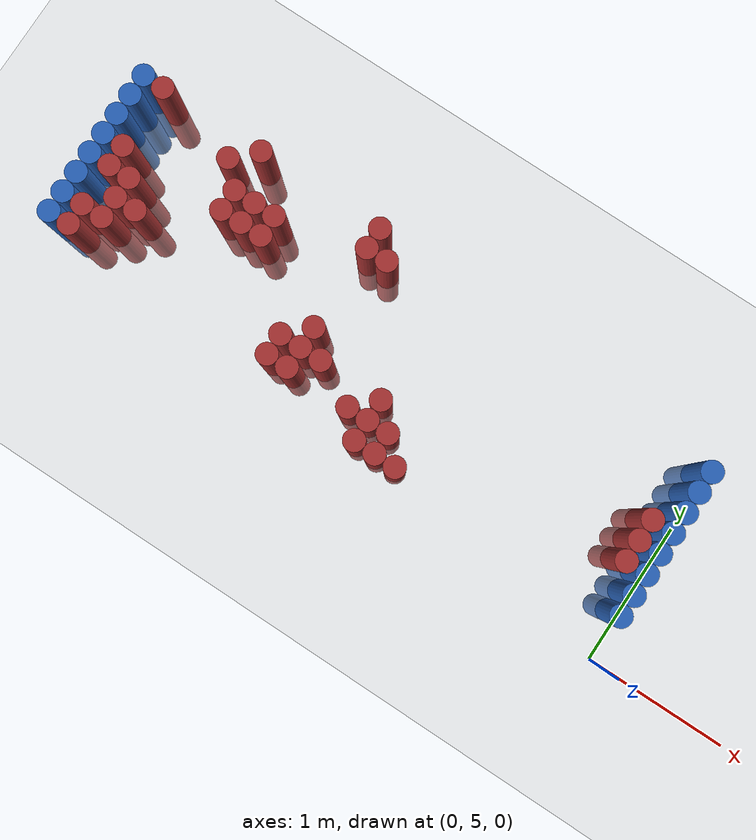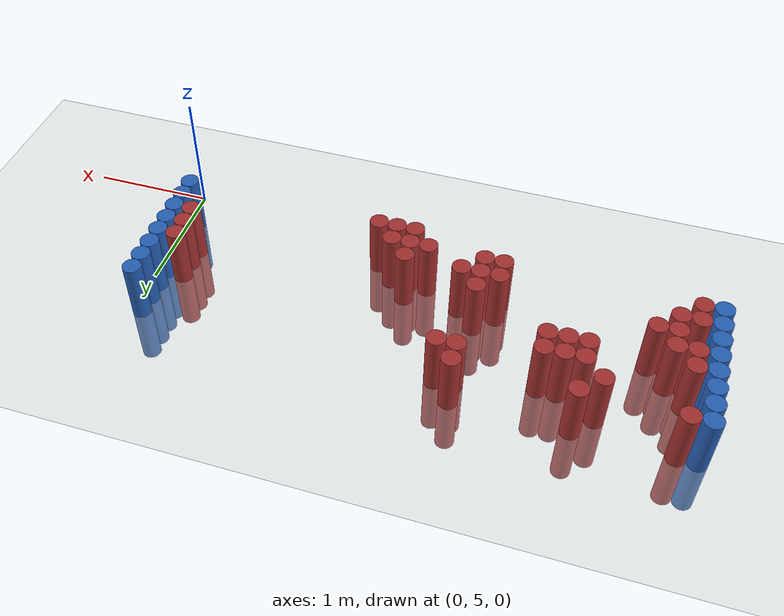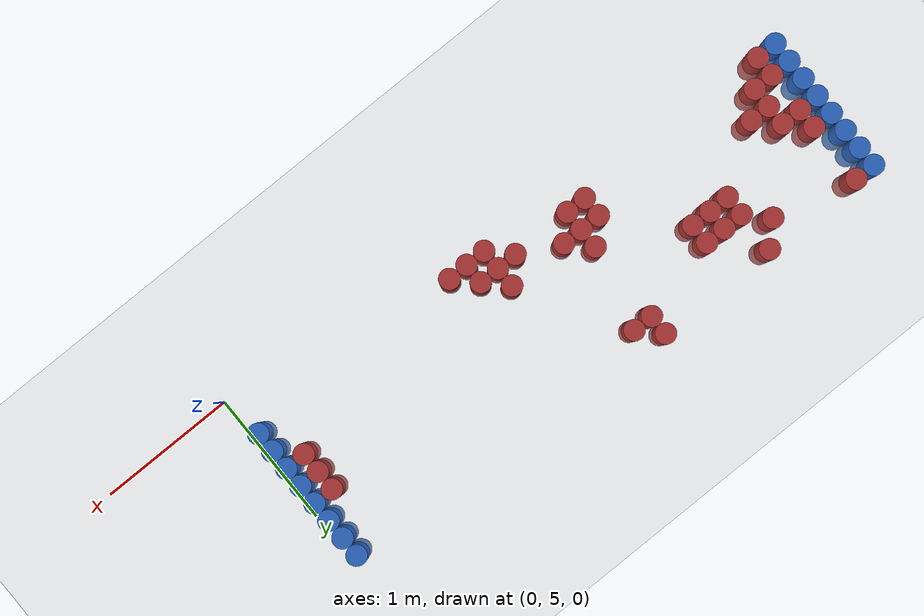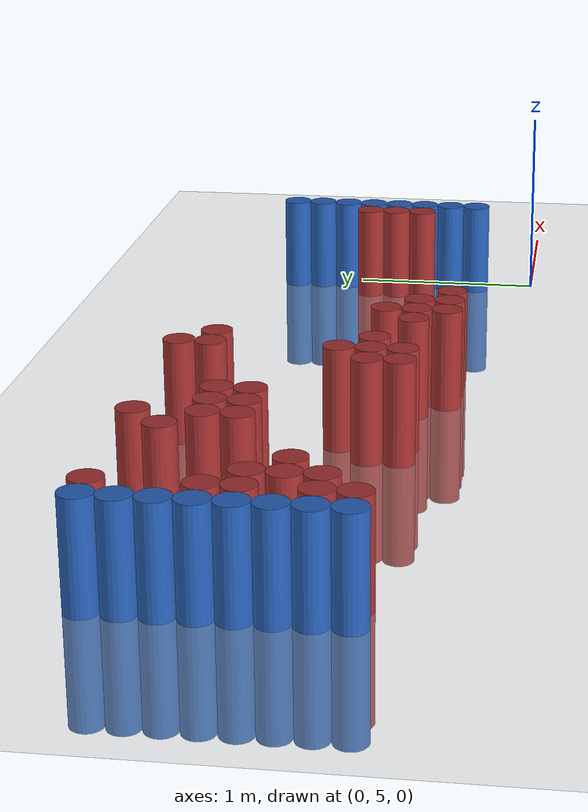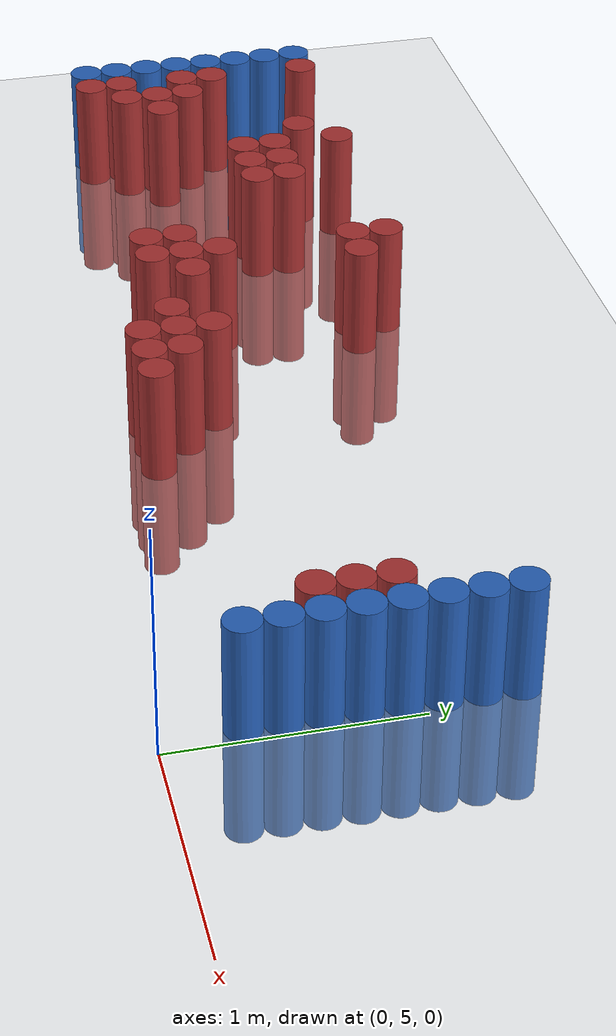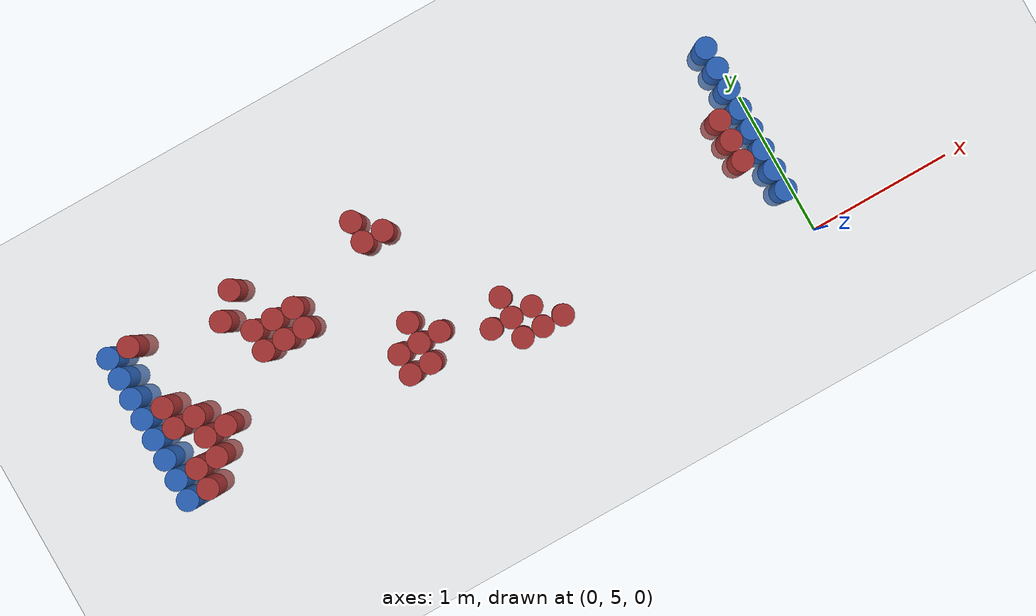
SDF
<sdf version="1.6">
 <world name="default">
  <model name="ground_plane">
   <static>1</static>
   <link name="link">
    <collision name="collision">
     <geometry><plane><normal>0 0 1</normal><size>100 100</size></plane></geometry>
     <surface><friction><ode><mu>100</mu><mu2>50</mu2></ode></friction></surface>
    </collision>
    <visual name="visual">
     <cast_shadows>0</cast_shadows>
     <geometry><plane><normal>0 0 1</normal><size>100 100</size></plane></geometry>
     <material>
      <script><uri>file://media/materials/scripts/gazebo.material</uri><name>Gazebo/Grey</name></script>
     </material>
    </visual>
   </link>
  </model>
  <model name="unit_cylinder_98">
   <static>1</static>
   <pose>-4.425000 5.475000 0.000000 0.000000 0.000000 0.000000</pose>
   <link name="link">
    <inertial>
     <mass>1</mass>
     <inertia><ixx>0.145833</ixx><ixy>0</ixy><ixz>0</ixz><iyy>0.145833</iyy><iyz>0</iyz><izz>0.125</izz></inertia>
    </inertial>
    <collision name="collision">
     <geometry><cylinder><radius>0.075000</radius><length>1</length></cylinder></geometry>
    </collision>
    <visual name="visual">
     <geometry><cylinder><radius>0.075000</radius><length>1</length></cylinder></geometry>
     <material>
      <ambient>0.152000 0.379000 0.720000 1</ambient>
      <diffuse>0.152000 0.379000 0.720000 1</diffuse>
     </material>
     <material>
      <script><name>Gazebo/Grey</name><uri>file://media/materials/scripts/gazebo.material</uri></script>
     </material>
    </visual>
   </link>
  </model>
  <model name="unit_cylinder_99">
   <static>1</static>
   <pose>-4.425000 5.625000 0.000000 0.000000 0.000000 0.000000</pose>
   <link name="link">
    <inertial>
     <mass>1</mass>
     <inertia><ixx>0.145833</ixx><ixy>0</ixy><ixz>0</ixz><iyy>0.145833</iyy><iyz>0</iyz><izz>0.125</izz></inertia>
    </inertial>
    <collision name="collision">
     <geometry><cylinder><radius>0.075000</radius><length>1</length></cylinder></geometry>
    </collision>
    <visual name="visual">
     <geometry><cylinder><radius>0.075000</radius><length>1</length></cylinder></geometry>
     <material>
      <ambient>0.152000 0.379000 0.720000 1</ambient>
      <diffuse>0.152000 0.379000 0.720000 1</diffuse>
     </material>
     <material>
      <script><name>Gazebo/Grey</name><uri>file://media/materials/scripts/gazebo.material</uri></script>
     </material>
    </visual>
   </link>
  </model>
  <model name="unit_cylinder_100">
   <static>1</static>
   <pose>-4.425000 5.775000 0.000000 0.000000 0.000000 0.000000</pose>
   <link name="link">
    <inertial>
     <mass>1</mass>
     <inertia><ixx>0.145833</ixx><ixy>0</ixy><ixz>0</ixz><iyy>0.145833</iyy><iyz>0</iyz><izz>0.125</izz></inertia>
    </inertial>
    <collision name="collision">
     <geometry><cylinder><radius>0.075000</radius><length>1</length></cylinder></geometry>
    </collision>
    <visual name="visual">
     <geometry><cylinder><radius>0.075000</radius><length>1</length></cylinder></geometry>
     <material>
      <ambient>0.152000 0.379000 0.720000 1</ambient>
      <diffuse>0.152000 0.379000 0.720000 1</diffuse>
     </material>
     <material>
      <script><name>Gazebo/Grey</name><uri>file://media/materials/scripts/gazebo.material</uri></script>
     </material>
    </visual>
   </link>
  </model>
  <model name="unit_cylinder_101">
   <static>1</static>
   <pose>-4.425000 5.925000 0.000000 0.000000 0.000000 0.000000</pose>
   <link name="link">
    <inertial>
     <mass>1</mass>
     <inertia><ixx>0.145833</ixx><ixy>0</ixy><ixz>0</ixz><iyy>0.145833</iyy><iyz>0</iyz><izz>0.125</izz></inertia>
    </inertial>
    <collision name="collision">
     <geometry><cylinder><radius>0.075000</radius><length>1</length></cylinder></geometry>
    </collision>
    <visual name="visual">
     <geometry><cylinder><radius>0.075000</radius><length>1</length></cylinder></geometry>
     <material>
      <ambient>0.152000 0.379000 0.720000 1</ambient>
      <diffuse>0.152000 0.379000 0.720000 1</diffuse>
     </material>
     <material>
      <script><name>Gazebo/Grey</name><uri>file://media/materials/scripts/gazebo.material</uri></script>
     </material>
    </visual>
   </link>
  </model>
  <model name="unit_cylinder_102">
   <static>1</static>
   <pose>-4.425000 6.075000 0.000000 0.000000 0.000000 0.000000</pose>
   <link name="link">
    <inertial>
     <mass>1</mass>
     <inertia><ixx>0.145833</ixx><ixy>0</ixy><ixz>0</ixz><iyy>0.145833</iyy><iyz>0</iyz><izz>0.125</izz></inertia>
    </inertial>
    <collision name="collision">
     <geometry><cylinder><radius>0.075000</radius><length>1</length></cylinder></geometry>
    </collision>
    <visual name="visual">
     <geometry><cylinder><radius>0.075000</radius><length>1</length></cylinder></geometry>
     <material>
      <ambient>0.152000 0.379000 0.720000 1</ambient>
      <diffuse>0.152000 0.379000 0.720000 1</diffuse>
     </material>
     <material>
      <script><name>Gazebo/Grey</name><uri>file://media/materials/scripts/gazebo.material</uri></script>
     </material>
    </visual>
   </link>
  </model>
  <model name="unit_cylinder_103">
   <static>1</static>
   <pose>-4.425000 6.225000 0.000000 0.000000 0.000000 0.000000</pose>
   <link name="link">
    <inertial>
     <mass>1</mass>
     <inertia><ixx>0.145833</ixx><ixy>0</ixy><ixz>0</ixz><iyy>0.145833</iyy><iyz>0</iyz><izz>0.125</izz></inertia>
    </inertial>
    <collision name="collision">
     <geometry><cylinder><radius>0.075000</radius><length>1</length></cylinder></geometry>
    </collision>
    <visual name="visual">
     <geometry><cylinder><radius>0.075000</radius><length>1</length></cylinder></geometry>
     <material>
      <ambient>0.152000 0.379000 0.720000 1</ambient>
      <diffuse>0.152000 0.379000 0.720000 1</diffuse>
     </material>
     <material>
      <script><name>Gazebo/Grey</name><uri>file://media/materials/scripts/gazebo.material</uri></script>
     </material>
    </visual>
   </link>
  </model>
  <model name="unit_cylinder_104">
   <static>1</static>
   <pose>-4.425000 6.375000 0.000000 0.000000 0.000000 0.000000</pose>
   <link name="link">
    <inertial>
     <mass>1</mass>
     <inertia><ixx>0.145833</ixx><ixy>0</ixy><ixz>0</ixz><iyy>0.145833</iyy><iyz>0</iyz><izz>0.125</izz></inertia>
    </inertial>
    <collision name="collision">
     <geometry><cylinder><radius>0.075000</radius><length>1</length></cylinder></geometry>
    </collision>
    <visual name="visual">
     <geometry><cylinder><radius>0.075000</radius><length>1</length></cylinder></geometry>
     <material>
      <ambient>0.152000 0.379000 0.720000 1</ambient>
      <diffuse>0.152000 0.379000 0.720000 1</diffuse>
     </material>
     <material>
      <script><name>Gazebo/Grey</name><uri>file://media/materials/scripts/gazebo.material</uri></script>
     </material>
    </visual>
   </link>
  </model>
  <model name="unit_cylinder_105">
   <static>1</static>
   <pose>-4.425000 6.525000 0.000000 0.000000 0.000000 0.000000</pose>
   <link name="link">
    <inertial>
     <mass>1</mass>
     <inertia><ixx>0.145833</ixx><ixy>0</ixy><ixz>0</ixz><iyy>0.145833</iyy><iyz>0</iyz><izz>0.125</izz></inertia>
    </inertial>
    <collision name="collision">
     <geometry><cylinder><radius>0.075000</radius><length>1</length></cylinder></geometry>
    </collision>
    <visual name="visual">
     <geometry><cylinder><radius>0.075000</radius><length>1</length></cylinder></geometry>
     <material>
      <ambient>0.152000 0.379000 0.720000 1</ambient>
      <diffuse>0.152000 0.379000 0.720000 1</diffuse>
     </material>
     <material>
      <script><name>Gazebo/Grey</name><uri>file://media/materials/scripts/gazebo.material</uri></script>
     </material>
    </visual>
   </link>
  </model>
  <model name="unit_cylinder_127">
   <static>1</static>
   <pose>-4.275000 5.475000 0.000000 0.000000 0.000000 0.000000</pose>
   <link name="link">
    <inertial>
     <mass>1</mass>
     <inertia><ixx>0.145833</ixx><ixy>0</ixy><ixz>0</ixz><iyy>0.145833</iyy><iyz>0</iyz><izz>0.125</izz></inertia>
    </inertial>
    <collision name="collision">
     <geometry><cylinder><radius>0.075000</radius><length>1</length></cylinder></geometry>
    </collision>
    <visual name="visual">
     <geometry><cylinder><radius>0.075000</radius><length>1</length></cylinder></geometry>
     <material>
      <ambient>0.648000 0.192000 0.192000 1</ambient>
      <diffuse>0.648000 0.192000 0.192000 1</diffuse>
     </material>
     <material>
      <script><name>Gazebo/Grey</name><uri>file://media/materials/scripts/gazebo.material</uri></script>
     </material>
    </visual>
   </link>
  </model>
  <model name="unit_cylinder_128">
   <static>1</static>
   <pose>-4.275000 5.625000 0.000000 0.000000 0.000000 0.000000</pose>
   <link name="link">
    <inertial>
     <mass>1</mass>
     <inertia><ixx>0.145833</ixx><ixy>0</ixy><ixz>0</ixz><iyy>0.145833</iyy><iyz>0</iyz><izz>0.125</izz></inertia>
    </inertial>
    <collision name="collision">
     <geometry><cylinder><radius>0.075000</radius><length>1</length></cylinder></geometry>
    </collision>
    <visual name="visual">
     <geometry><cylinder><radius>0.075000</radius><length>1</length></cylinder></geometry>
     <material>
      <ambient>0.648000 0.192000 0.192000 1</ambient>
      <diffuse>0.648000 0.192000 0.192000 1</diffuse>
     </material>
     <material>
      <script><name>Gazebo/Grey</name><uri>file://media/materials/scripts/gazebo.material</uri></script>
     </material>
    </visual>
   </link>
  </model>
  <model name="unit_cylinder_129">
   <static>1</static>
   <pose>-4.275000 5.925000 0.000000 0.000000 0.000000 0.000000</pose>
   <link name="link">
    <inertial>
     <mass>1</mass>
     <inertia><ixx>0.145833</ixx><ixy>0</ixy><ixz>0</ixz><iyy>0.145833</iyy><iyz>0</iyz><izz>0.125</izz></inertia>
    </inertial>
    <collision name="collision">
     <geometry><cylinder><radius>0.075000</radius><length>1</length></cylinder></geometry>
    </collision>
    <visual name="visual">
     <geometry><cylinder><radius>0.075000</radius><length>1</length></cylinder></geometry>
     <material>
      <ambient>0.648000 0.192000 0.192000 1</ambient>
      <diffuse>0.648000 0.192000 0.192000 1</diffuse>
     </material>
     <material>
      <script><name>Gazebo/Grey</name><uri>file://media/materials/scripts/gazebo.material</uri></script>
     </material>
    </visual>
   </link>
  </model>
  <model name="unit_cylinder_130">
   <static>1</static>
   <pose>-4.275000 6.075000 0.000000 0.000000 0.000000 0.000000</pose>
   <link name="link">
    <inertial>
     <mass>1</mass>
     <inertia><ixx>0.145833</ixx><ixy>0</ixy><ixz>0</ixz><iyy>0.145833</iyy><iyz>0</iyz><izz>0.125</izz></inertia>
    </inertial>
    <collision name="collision">
     <geometry><cylinder><radius>0.075000</radius><length>1</length></cylinder></geometry>
    </collision>
    <visual name="visual">
     <geometry><cylinder><radius>0.075000</radius><length>1</length></cylinder></geometry>
     <material>
      <ambient>0.648000 0.192000 0.192000 1</ambient>
      <diffuse>0.648000 0.192000 0.192000 1</diffuse>
     </material>
     <material>
      <script><name>Gazebo/Grey</name><uri>file://media/materials/scripts/gazebo.material</uri></script>
     </material>
    </visual>
   </link>
  </model>
  <model name="unit_cylinder_131">
   <static>1</static>
   <pose>-4.275000 6.525000 0.000000 0.000000 0.000000 0.000000</pose>
   <link name="link">
    <inertial>
     <mass>1</mass>
     <inertia><ixx>0.145833</ixx><ixy>0</ixy><ixz>0</ixz><iyy>0.145833</iyy><iyz>0</iyz><izz>0.125</izz></inertia>
    </inertial>
    <collision name="collision">
     <geometry><cylinder><radius>0.075000</radius><length>1</length></cylinder></geometry>
    </collision>
    <visual name="visual">
     <geometry><cylinder><radius>0.075000</radius><length>1</length></cylinder></geometry>
     <material>
      <ambient>0.648000 0.192000 0.192000 1</ambient>
      <diffuse>0.648000 0.192000 0.192000 1</diffuse>
     </material>
     <material>
      <script><name>Gazebo/Grey</name><uri>file://media/materials/scripts/gazebo.material</uri></script>
     </material>
    </visual>
   </link>
  </model>
  <model name="unit_cylinder_140">
   <static>1</static>
   <pose>-4.125000 5.625000 0.000000 0.000000 0.000000 0.000000</pose>
   <link name="link">
    <inertial>
     <mass>1</mass>
     <inertia><ixx>0.145833</ixx><ixy>0</ixy><ixz>0</ixz><iyy>0.145833</iyy><iyz>0</iyz><izz>0.125</izz></inertia>
    </inertial>
    <collision name="collision">
     <geometry><cylinder><radius>0.075000</radius><length>1</length></cylinder></geometry>
    </collision>
    <visual name="visual">
     <geometry><cylinder><radius>0.075000</radius><length>1</length></cylinder></geometry>
     <material>
      <ambient>0.648000 0.192000 0.192000 1</ambient>
      <diffuse>0.648000 0.192000 0.192000 1</diffuse>
     </material>
     <material>
      <script><name>Gazebo/Grey</name><uri>file://media/materials/scripts/gazebo.material</uri></script>
     </material>
    </visual>
   </link>
  </model>
  <model name="unit_cylinder_141">
   <static>1</static>
   <pose>-4.125000 5.775000 0.000000 0.000000 0.000000 0.000000</pose>
   <link name="link">
    <inertial>
     <mass>1</mass>
     <inertia><ixx>0.145833</ixx><ixy>0</ixy><ixz>0</ixz><iyy>0.145833</iyy><iyz>0</iyz><izz>0.125</izz></inertia>
    </inertial>
    <collision name="collision">
     <geometry><cylinder><radius>0.075000</radius><length>1</length></cylinder></geometry>
    </collision>
    <visual name="visual">
     <geometry><cylinder><radius>0.075000</radius><length>1</length></cylinder></geometry>
     <material>
      <ambient>0.648000 0.192000 0.192000 1</ambient>
      <diffuse>0.648000 0.192000 0.192000 1</diffuse>
     </material>
     <material>
      <script><name>Gazebo/Grey</name><uri>file://media/materials/scripts/gazebo.material</uri></script>
     </material>
    </visual>
   </link>
  </model>
  <model name="unit_cylinder_142">
   <static>1</static>
   <pose>-4.125000 5.925000 0.000000 0.000000 0.000000 0.000000</pose>
   <link name="link">
    <inertial>
     <mass>1</mass>
     <inertia><ixx>0.145833</ixx><ixy>0</ixy><ixz>0</ixz><iyy>0.145833</iyy><iyz>0</iyz><izz>0.125</izz></inertia>
    </inertial>
    <collision name="collision">
     <geometry><cylinder><radius>0.075000</radius><length>1</length></cylinder></geometry>
    </collision>
    <visual name="visual">
     <geometry><cylinder><radius>0.075000</radius><length>1</length></cylinder></geometry>
     <material>
      <ambient>0.648000 0.192000 0.192000 1</ambient>
      <diffuse>0.648000 0.192000 0.192000 1</diffuse>
     </material>
     <material>
      <script><name>Gazebo/Grey</name><uri>file://media/materials/scripts/gazebo.material</uri></script>
     </material>
    </visual>
   </link>
  </model>
  <model name="unit_cylinder_146">
   <static>1</static>
   <pose>-3.975000 5.775000 0.000000 0.000000 0.000000 0.000000</pose>
   <link name="link">
    <inertial>
     <mass>1</mass>
     <inertia><ixx>0.145833</ixx><ixy>0</ixy><ixz>0</ixz><iyy>0.145833</iyy><iyz>0</iyz><izz>0.125</izz></inertia>
    </inertial>
    <collision name="collision">
     <geometry><cylinder><radius>0.075000</radius><length>1</length></cylinder></geometry>
    </collision>
    <visual name="visual">
     <geometry><cylinder><radius>0.075000</radius><length>1</length></cylinder></geometry>
     <material>
      <ambient>0.648000 0.192000 0.192000 1</ambient>
      <diffuse>0.648000 0.192000 0.192000 1</diffuse>
     </material>
     <material>
      <script><name>Gazebo/Grey</name><uri>file://media/materials/scripts/gazebo.material</uri></script>
     </material>
    </visual>
   </link>
  </model>
  <model name="unit_cylinder_151">
   <static>1</static>
   <pose>-3.675000 6.375000 0.000000 0.000000 0.000000 0.000000</pose>
   <link name="link">
    <inertial>
     <mass>1</mass>
     <inertia><ixx>0.145833</ixx><ixy>0</ixy><ixz>0</ixz><iyy>0.145833</iyy><iyz>0</iyz><izz>0.125</izz></inertia>
    </inertial>
    <collision name="collision">
     <geometry><cylinder><radius>0.075000</radius><length>1</length></cylinder></geometry>
    </collision>
    <visual name="visual">
     <geometry><cylinder><radius>0.075000</radius><length>1</length></cylinder></geometry>
     <material>
      <ambient>0.648000 0.192000 0.192000 1</ambient>
      <diffuse>0.648000 0.192000 0.192000 1</diffuse>
     </material>
     <material>
      <script><name>Gazebo/Grey</name><uri>file://media/materials/scripts/gazebo.material</uri></script>
     </material>
    </visual>
   </link>
  </model>
  <model name="unit_cylinder_157">
   <static>1</static>
   <pose>-3.525000 6.075000 0.000000 0.000000 0.000000 0.000000</pose>
   <link name="link">
    <inertial>
     <mass>1</mass>
     <inertia><ixx>0.145833</ixx><ixy>0</ixy><ixz>0</ixz><iyy>0.145833</iyy><iyz>0</iyz><izz>0.125</izz></inertia>
    </inertial>
    <collision name="collision">
     <geometry><cylinder><radius>0.075000</radius><length>1</length></cylinder></geometry>
    </collision>
    <visual name="visual">
     <geometry><cylinder><radius>0.075000</radius><length>1</length></cylinder></geometry>
     <material>
      <ambient>0.648000 0.192000 0.192000 1</ambient>
      <diffuse>0.648000 0.192000 0.192000 1</diffuse>
     </material>
     <material>
      <script><name>Gazebo/Grey</name><uri>file://media/materials/scripts/gazebo.material</uri></script>
     </material>
    </visual>
   </link>
  </model>
  <model name="unit_cylinder_158">
   <static>1</static>
   <pose>-3.525000 6.225000 0.000000 0.000000 0.000000 0.000000</pose>
   <link name="link">
    <inertial>
     <mass>1</mass>
     <inertia><ixx>0.145833</ixx><ixy>0</ixy><ixz>0</ixz><iyy>0.145833</iyy><iyz>0</iyz><izz>0.125</izz></inertia>
    </inertial>
    <collision name="collision">
     <geometry><cylinder><radius>0.075000</radius><length>1</length></cylinder></geometry>
    </collision>
    <visual name="visual">
     <geometry><cylinder><radius>0.075000</radius><length>1</length></cylinder></geometry>
     <material>
      <ambient>0.648000 0.192000 0.192000 1</ambient>
      <diffuse>0.648000 0.192000 0.192000 1</diffuse>
     </material>
     <material>
      <script><name>Gazebo/Grey</name><uri>file://media/materials/scripts/gazebo.material</uri></script>
     </material>
    </visual>
   </link>
  </model>
  <model name="unit_cylinder_159">
   <static>1</static>
   <pose>-3.525000 6.525000 0.000000 0.000000 0.000000 0.000000</pose>
   <link name="link">
    <inertial>
     <mass>1</mass>
     <inertia><ixx>0.145833</ixx><ixy>0</ixy><ixz>0</ixz><iyy>0.145833</iyy><iyz>0</iyz><izz>0.125</izz></inertia>
    </inertial>
    <collision name="collision">
     <geometry><cylinder><radius>0.075000</radius><length>1</length></cylinder></geometry>
    </collision>
    <visual name="visual">
     <geometry><cylinder><radius>0.075000</radius><length>1</length></cylinder></geometry>
     <material>
      <ambient>0.648000 0.192000 0.192000 1</ambient>
      <diffuse>0.648000 0.192000 0.192000 1</diffuse>
     </material>
     <material>
      <script><name>Gazebo/Grey</name><uri>file://media/materials/scripts/gazebo.material</uri></script>
     </material>
    </visual>
   </link>
  </model>
  <model name="unit_cylinder_166">
   <static>1</static>
   <pose>-3.375000 6.075000 0.000000 0.000000 0.000000 0.000000</pose>
   <link name="link">
    <inertial>
     <mass>1</mass>
     <inertia><ixx>0.145833</ixx><ixy>0</ixy><ixz>0</ixz><iyy>0.145833</iyy><iyz>0</iyz><izz>0.125</izz></inertia>
    </inertial>
    <collision name="collision">
     <geometry><cylinder><radius>0.075000</radius><length>1</length></cylinder></geometry>
    </collision>
    <visual name="visual">
     <geometry><cylinder><radius>0.075000</radius><length>1</length></cylinder></geometry>
     <material>
      <ambient>0.648000 0.192000 0.192000 1</ambient>
      <diffuse>0.648000 0.192000 0.192000 1</diffuse>
     </material>
     <material>
      <script><name>Gazebo/Grey</name><uri>file://media/materials/scripts/gazebo.material</uri></script>
     </material>
    </visual>
   </link>
  </model>
  <model name="unit_cylinder_167">
   <static>1</static>
   <pose>-3.375000 6.225000 0.000000 0.000000 0.000000 0.000000</pose>
   <link name="link">
    <inertial>
     <mass>1</mass>
     <inertia><ixx>0.145833</ixx><ixy>0</ixy><ixz>0</ixz><iyy>0.145833</iyy><iyz>0</iyz><izz>0.125</izz></inertia>
    </inertial>
    <collision name="collision">
     <geometry><cylinder><radius>0.075000</radius><length>1</length></cylinder></geometry>
    </collision>
    <visual name="visual">
     <geometry><cylinder><radius>0.075000</radius><length>1</length></cylinder></geometry>
     <material>
      <ambient>0.648000 0.192000 0.192000 1</ambient>
      <diffuse>0.648000 0.192000 0.192000 1</diffuse>
     </material>
     <material>
      <script><name>Gazebo/Grey</name><uri>file://media/materials/scripts/gazebo.material</uri></script>
     </material>
    </visual>
   </link>
  </model>
  <model name="unit_cylinder_170">
   <static>1</static>
   <pose>-3.225000 6.075000 0.000000 0.000000 0.000000 0.000000</pose>
   <link name="link">
    <inertial>
     <mass>1</mass>
     <inertia><ixx>0.145833</ixx><ixy>0</ixy><ixz>0</ixz><iyy>0.145833</iyy><iyz>0</iyz><izz>0.125</izz></inertia>
    </inertial>
    <collision name="collision">
     <geometry><cylinder><radius>0.075000</radius><length>1</length></cylinder></geometry>
    </collision>
    <visual name="visual">
     <geometry><cylinder><radius>0.075000</radius><length>1</length></cylinder></geometry>
     <material>
      <ambient>0.648000 0.192000 0.192000 1</ambient>
      <diffuse>0.648000 0.192000 0.192000 1</diffuse>
     </material>
     <material>
      <script><name>Gazebo/Grey</name><uri>file://media/materials/scripts/gazebo.material</uri></script>
     </material>
    </visual>
   </link>
  </model>
  <model name="unit_cylinder_171">
   <static>1</static>
   <pose>-3.225000 6.225000 0.000000 0.000000 0.000000 0.000000</pose>
   <link name="link">
    <inertial>
     <mass>1</mass>
     <inertia><ixx>0.145833</ixx><ixy>0</ixy><ixz>0</ixz><iyy>0.145833</iyy><iyz>0</iyz><izz>0.125</izz></inertia>
    </inertial>
    <collision name="collision">
     <geometry><cylinder><radius>0.075000</radius><length>1</length></cylinder></geometry>
    </collision>
    <visual name="visual">
     <geometry><cylinder><radius>0.075000</radius><length>1</length></cylinder></geometry>
     <material>
      <ambient>0.648000 0.192000 0.192000 1</ambient>
      <diffuse>0.648000 0.192000 0.192000 1</diffuse>
     </material>
     <material>
      <script><name>Gazebo/Grey</name><uri>file://media/materials/scripts/gazebo.material</uri></script>
     </material>
    </visual>
   </link>
  </model>
  <model name="unit_cylinder_176">
   <static>1</static>
   <pose>-2.775000 5.475000 0.000000 0.000000 0.000000 0.000000</pose>
   <link name="link">
    <inertial>
     <mass>1</mass>
     <inertia><ixx>0.145833</ixx><ixy>0</ixy><ixz>0</ixz><iyy>0.145833</iyy><iyz>0</iyz><izz>0.125</izz></inertia>
    </inertial>
    <collision name="collision">
     <geometry><cylinder><radius>0.075000</radius><length>1</length></cylinder></geometry>
    </collision>
    <visual name="visual">
     <geometry><cylinder><radius>0.075000</radius><length>1</length></cylinder></geometry>
     <material>
      <ambient>0.648000 0.192000 0.192000 1</ambient>
      <diffuse>0.648000 0.192000 0.192000 1</diffuse>
     </material>
     <material>
      <script><name>Gazebo/Grey</name><uri>file://media/materials/scripts/gazebo.material</uri></script>
     </material>
    </visual>
   </link>
  </model>
  <model name="unit_cylinder_177">
   <static>1</static>
   <pose>-2.775000 5.625000 0.000000 0.000000 0.000000 0.000000</pose>
   <link name="link">
    <inertial>
     <mass>1</mass>
     <inertia><ixx>0.145833</ixx><ixy>0</ixy><ixz>0</ixz><iyy>0.145833</iyy><iyz>0</iyz><izz>0.125</izz></inertia>
    </inertial>
    <collision name="collision">
     <geometry><cylinder><radius>0.075000</radius><length>1</length></cylinder></geometry>
    </collision>
    <visual name="visual">
     <geometry><cylinder><radius>0.075000</radius><length>1</length></cylinder></geometry>
     <material>
      <ambient>0.648000 0.192000 0.192000 1</ambient>
      <diffuse>0.648000 0.192000 0.192000 1</diffuse>
     </material>
     <material>
      <script><name>Gazebo/Grey</name><uri>file://media/materials/scripts/gazebo.material</uri></script>
     </material>
    </visual>
   </link>
  </model>
  <model name="unit_cylinder_188">
   <static>1</static>
   <pose>-2.625000 5.475000 0.000000 0.000000 0.000000 0.000000</pose>
   <link name="link">
    <inertial>
     <mass>1</mass>
     <inertia><ixx>0.145833</ixx><ixy>0</ixy><ixz>0</ixz><iyy>0.145833</iyy><iyz>0</iyz><izz>0.125</izz></inertia>
    </inertial>
    <collision name="collision">
     <geometry><cylinder><radius>0.075000</radius><length>1</length></cylinder></geometry>
    </collision>
    <visual name="visual">
     <geometry><cylinder><radius>0.075000</radius><length>1</length></cylinder></geometry>
     <material>
      <ambient>0.648000 0.192000 0.192000 1</ambient>
      <diffuse>0.648000 0.192000 0.192000 1</diffuse>
     </material>
     <material>
      <script><name>Gazebo/Grey</name><uri>file://media/materials/scripts/gazebo.material</uri></script>
     </material>
    </visual>
   </link>
  </model>
  <model name="unit_cylinder_189">
   <static>1</static>
   <pose>-2.625000 5.625000 0.000000 0.000000 0.000000 0.000000</pose>
   <link name="link">
    <inertial>
     <mass>1</mass>
     <inertia><ixx>0.145833</ixx><ixy>0</ixy><ixz>0</ixz><iyy>0.145833</iyy><iyz>0</iyz><izz>0.125</izz></inertia>
    </inertial>
    <collision name="collision">
     <geometry><cylinder><radius>0.075000</radius><length>1</length></cylinder></geometry>
    </collision>
    <visual name="visual">
     <geometry><cylinder><radius>0.075000</radius><length>1</length></cylinder></geometry>
     <material>
      <ambient>0.648000 0.192000 0.192000 1</ambient>
      <diffuse>0.648000 0.192000 0.192000 1</diffuse>
     </material>
     <material>
      <script><name>Gazebo/Grey</name><uri>file://media/materials/scripts/gazebo.material</uri></script>
     </material>
    </visual>
   </link>
  </model>
  <model name="unit_cylinder_190">
   <static>1</static>
   <pose>-2.625000 5.775000 0.000000 0.000000 0.000000 0.000000</pose>
   <link name="link">
    <inertial>
     <mass>1</mass>
     <inertia><ixx>0.145833</ixx><ixy>0</ixy><ixz>0</ixz><iyy>0.145833</iyy><iyz>0</iyz><izz>0.125</izz></inertia>
    </inertial>
    <collision name="collision">
     <geometry><cylinder><radius>0.075000</radius><length>1</length></cylinder></geometry>
    </collision>
    <visual name="visual">
     <geometry><cylinder><radius>0.075000</radius><length>1</length></cylinder></geometry>
     <material>
      <ambient>0.648000 0.192000 0.192000 1</ambient>
      <diffuse>0.648000 0.192000 0.192000 1</diffuse>
     </material>
     <material>
      <script><name>Gazebo/Grey</name><uri>file://media/materials/scripts/gazebo.material</uri></script>
     </material>
    </visual>
   </link>
  </model>
  <model name="unit_cylinder_191">
   <static>1</static>
   <pose>-2.625000 6.375000 0.000000 0.000000 0.000000 0.000000</pose>
   <link name="link">
    <inertial>
     <mass>1</mass>
     <inertia><ixx>0.145833</ixx><ixy>0</ixy><ixz>0</ixz><iyy>0.145833</iyy><iyz>0</iyz><izz>0.125</izz></inertia>
    </inertial>
    <collision name="collision">
     <geometry><cylinder><radius>0.075000</radius><length>1</length></cylinder></geometry>
    </collision>
    <visual name="visual">
     <geometry><cylinder><radius>0.075000</radius><length>1</length></cylinder></geometry>
     <material>
      <ambient>0.648000 0.192000 0.192000 1</ambient>
      <diffuse>0.648000 0.192000 0.192000 1</diffuse>
     </material>
     <material>
      <script><name>Gazebo/Grey</name><uri>file://media/materials/scripts/gazebo.material</uri></script>
     </material>
    </visual>
   </link>
  </model>
  <model name="unit_cylinder_192">
   <static>1</static>
   <pose>-2.625000 6.525000 0.000000 0.000000 0.000000 0.000000</pose>
   <link name="link">
    <inertial>
     <mass>1</mass>
     <inertia><ixx>0.145833</ixx><ixy>0</ixy><ixz>0</ixz><iyy>0.145833</iyy><iyz>0</iyz><izz>0.125</izz></inertia>
    </inertial>
    <collision name="collision">
     <geometry><cylinder><radius>0.075000</radius><length>1</length></cylinder></geometry>
    </collision>
    <visual name="visual">
     <geometry><cylinder><radius>0.075000</radius><length>1</length></cylinder></geometry>
     <material>
      <ambient>0.648000 0.192000 0.192000 1</ambient>
      <diffuse>0.648000 0.192000 0.192000 1</diffuse>
     </material>
     <material>
      <script><name>Gazebo/Grey</name><uri>file://media/materials/scripts/gazebo.material</uri></script>
     </material>
    </visual>
   </link>
  </model>
  <model name="unit_cylinder_199">
   <static>1</static>
   <pose>-2.475000 5.625000 0.000000 0.000000 0.000000 0.000000</pose>
   <link name="link">
    <inertial>
     <mass>1</mass>
     <inertia><ixx>0.145833</ixx><ixy>0</ixy><ixz>0</ixz><iyy>0.145833</iyy><iyz>0</iyz><izz>0.125</izz></inertia>
    </inertial>
    <collision name="collision">
     <geometry><cylinder><radius>0.075000</radius><length>1</length></cylinder></geometry>
    </collision>
    <visual name="visual">
     <geometry><cylinder><radius>0.075000</radius><length>1</length></cylinder></geometry>
     <material>
      <ambient>0.648000 0.192000 0.192000 1</ambient>
      <diffuse>0.648000 0.192000 0.192000 1</diffuse>
     </material>
     <material>
      <script><name>Gazebo/Grey</name><uri>file://media/materials/scripts/gazebo.material</uri></script>
     </material>
    </visual>
   </link>
  </model>
  <model name="unit_cylinder_200">
   <static>1</static>
   <pose>-2.475000 6.375000 0.000000 0.000000 0.000000 0.000000</pose>
   <link name="link">
    <inertial>
     <mass>1</mass>
     <inertia><ixx>0.145833</ixx><ixy>0</ixy><ixz>0</ixz><iyy>0.145833</iyy><iyz>0</iyz><izz>0.125</izz></inertia>
    </inertial>
    <collision name="collision">
     <geometry><cylinder><radius>0.075000</radius><length>1</length></cylinder></geometry>
    </collision>
    <visual name="visual">
     <geometry><cylinder><radius>0.075000</radius><length>1</length></cylinder></geometry>
     <material>
      <ambient>0.648000 0.192000 0.192000 1</ambient>
      <diffuse>0.648000 0.192000 0.192000 1</diffuse>
     </material>
     <material>
      <script><name>Gazebo/Grey</name><uri>file://media/materials/scripts/gazebo.material</uri></script>
     </material>
    </visual>
   </link>
  </model>
  <model name="unit_cylinder_213">
   <static>1</static>
   <pose>-2.175000 5.475000 0.000000 0.000000 0.000000 0.000000</pose>
   <link name="link">
    <inertial>
     <mass>1</mass>
     <inertia><ixx>0.145833</ixx><ixy>0</ixy><ixz>0</ixz><iyy>0.145833</iyy><iyz>0</iyz><izz>0.125</izz></inertia>
    </inertial>
    <collision name="collision">
     <geometry><cylinder><radius>0.075000</radius><length>1</length></cylinder></geometry>
    </collision>
    <visual name="visual">
     <geometry><cylinder><radius>0.075000</radius><length>1</length></cylinder></geometry>
     <material>
      <ambient>0.648000 0.192000 0.192000 1</ambient>
      <diffuse>0.648000 0.192000 0.192000 1</diffuse>
     </material>
     <material>
      <script><name>Gazebo/Grey</name><uri>file://media/materials/scripts/gazebo.material</uri></script>
     </material>
    </visual>
   </link>
  </model>
  <model name="unit_cylinder_216">
   <static>1</static>
   <pose>-2.025000 5.325000 0.000000 0.000000 0.000000 0.000000</pose>
   <link name="link">
    <inertial>
     <mass>1</mass>
     <inertia><ixx>0.145833</ixx><ixy>0</ixy><ixz>0</ixz><iyy>0.145833</iyy><iyz>0</iyz><izz>0.125</izz></inertia>
    </inertial>
    <collision name="collision">
     <geometry><cylinder><radius>0.075000</radius><length>1</length></cylinder></geometry>
    </collision>
    <visual name="visual">
     <geometry><cylinder><radius>0.075000</radius><length>1</length></cylinder></geometry>
     <material>
      <ambient>0.648000 0.192000 0.192000 1</ambient>
      <diffuse>0.648000 0.192000 0.192000 1</diffuse>
     </material>
     <material>
      <script><name>Gazebo/Grey</name><uri>file://media/materials/scripts/gazebo.material</uri></script>
     </material>
    </visual>
   </link>
  </model>
  <model name="unit_cylinder_217">
   <static>1</static>
   <pose>-2.025000 5.475000 0.000000 0.000000 0.000000 0.000000</pose>
   <link name="link">
    <inertial>
     <mass>1</mass>
     <inertia><ixx>0.145833</ixx><ixy>0</ixy><ixz>0</ixz><iyy>0.145833</iyy><iyz>0</iyz><izz>0.125</izz></inertia>
    </inertial>
    <collision name="collision">
     <geometry><cylinder><radius>0.075000</radius><length>1</length></cylinder></geometry>
    </collision>
    <visual name="visual">
     <geometry><cylinder><radius>0.075000</radius><length>1</length></cylinder></geometry>
     <material>
      <ambient>0.648000 0.192000 0.192000 1</ambient>
      <diffuse>0.648000 0.192000 0.192000 1</diffuse>
     </material>
     <material>
      <script><name>Gazebo/Grey</name><uri>file://media/materials/scripts/gazebo.material</uri></script>
     </material>
    </visual>
   </link>
  </model>
  <model name="unit_cylinder_218">
   <static>1</static>
   <pose>-2.025000 5.625000 0.000000 0.000000 0.000000 0.000000</pose>
   <link name="link">
    <inertial>
     <mass>1</mass>
     <inertia><ixx>0.145833</ixx><ixy>0</ixy><ixz>0</ixz><iyy>0.145833</iyy><iyz>0</iyz><izz>0.125</izz></inertia>
    </inertial>
    <collision name="collision">
     <geometry><cylinder><radius>0.075000</radius><length>1</length></cylinder></geometry>
    </collision>
    <visual name="visual">
     <geometry><cylinder><radius>0.075000</radius><length>1</length></cylinder></geometry>
     <material>
      <ambient>0.648000 0.192000 0.192000 1</ambient>
      <diffuse>0.648000 0.192000 0.192000 1</diffuse>
     </material>
     <material>
      <script><name>Gazebo/Grey</name><uri>file://media/materials/scripts/gazebo.material</uri></script>
     </material>
    </visual>
   </link>
  </model>
  <model name="unit_cylinder_219">
   <static>1</static>
   <pose>-1.875000 5.325000 0.000000 0.000000 0.000000 0.000000</pose>
   <link name="link">
    <inertial>
     <mass>1</mass>
     <inertia><ixx>0.145833</ixx><ixy>0</ixy><ixz>0</ixz><iyy>0.145833</iyy><iyz>0</iyz><izz>0.125</izz></inertia>
    </inertial>
    <collision name="collision">
     <geometry><cylinder><radius>0.075000</radius><length>1</length></cylinder></geometry>
    </collision>
    <visual name="visual">
     <geometry><cylinder><radius>0.075000</radius><length>1</length></cylinder></geometry>
     <material>
      <ambient>0.648000 0.192000 0.192000 1</ambient>
      <diffuse>0.648000 0.192000 0.192000 1</diffuse>
     </material>
     <material>
      <script><name>Gazebo/Grey</name><uri>file://media/materials/scripts/gazebo.material</uri></script>
     </material>
    </visual>
   </link>
  </model>
  <model name="unit_cylinder_220">
   <static>1</static>
   <pose>-1.875000 5.475000 0.000000 0.000000 0.000000 0.000000</pose>
   <link name="link">
    <inertial>
     <mass>1</mass>
     <inertia><ixx>0.145833</ixx><ixy>0</ixy><ixz>0</ixz><iyy>0.145833</iyy><iyz>0</iyz><izz>0.125</izz></inertia>
    </inertial>
    <collision name="collision">
     <geometry><cylinder><radius>0.075000</radius><length>1</length></cylinder></geometry>
    </collision>
    <visual name="visual">
     <geometry><cylinder><radius>0.075000</radius><length>1</length></cylinder></geometry>
     <material>
      <ambient>0.648000 0.192000 0.192000 1</ambient>
      <diffuse>0.648000 0.192000 0.192000 1</diffuse>
     </material>
     <material>
      <script><name>Gazebo/Grey</name><uri>file://media/materials/scripts/gazebo.material</uri></script>
     </material>
    </visual>
   </link>
  </model>
  <model name="unit_cylinder_222">
   <static>1</static>
   <pose>-1.725000 5.325000 0.000000 0.000000 0.000000 0.000000</pose>
   <link name="link">
    <inertial>
     <mass>1</mass>
     <inertia><ixx>0.145833</ixx><ixy>0</ixy><ixz>0</ixz><iyy>0.145833</iyy><iyz>0</iyz><izz>0.125</izz></inertia>
    </inertial>
    <collision name="collision">
     <geometry><cylinder><radius>0.075000</radius><length>1</length></cylinder></geometry>
    </collision>
    <visual name="visual">
     <geometry><cylinder><radius>0.075000</radius><length>1</length></cylinder></geometry>
     <material>
      <ambient>0.648000 0.192000 0.192000 1</ambient>
      <diffuse>0.648000 0.192000 0.192000 1</diffuse>
     </material>
     <material>
      <script><name>Gazebo/Grey</name><uri>file://media/materials/scripts/gazebo.material</uri></script>
     </material>
    </visual>
   </link>
  </model>
  <model name="unit_cylinder_263">
   <static>1</static>
   <pose>-0.225000 5.625000 0.000000 0.000000 0.000000 0.000000</pose>
   <link name="link">
    <inertial>
     <mass>1</mass>
     <inertia><ixx>0.145833</ixx><ixy>0</ixy><ixz>0</ixz><iyy>0.145833</iyy><iyz>0</iyz><izz>0.125</izz></inertia>
    </inertial>
    <collision name="collision">
     <geometry><cylinder><radius>0.075000</radius><length>1</length></cylinder></geometry>
    </collision>
    <visual name="visual">
     <geometry><cylinder><radius>0.075000</radius><length>1</length></cylinder></geometry>
     <material>
      <ambient>0.648000 0.192000 0.192000 1</ambient>
      <diffuse>0.648000 0.192000 0.192000 1</diffuse>
     </material>
     <material>
      <script><name>Gazebo/Grey</name><uri>file://media/materials/scripts/gazebo.material</uri></script>
     </material>
    </visual>
   </link>
  </model>
  <model name="unit_cylinder_264">
   <static>1</static>
   <pose>-0.225000 5.775000 0.000000 0.000000 0.000000 0.000000</pose>
   <link name="link">
    <inertial>
     <mass>1</mass>
     <inertia><ixx>0.145833</ixx><ixy>0</ixy><ixz>0</ixz><iyy>0.145833</iyy><iyz>0</iyz><izz>0.125</izz></inertia>
    </inertial>
    <collision name="collision">
     <geometry><cylinder><radius>0.075000</radius><length>1</length></cylinder></geometry>
    </collision>
    <visual name="visual">
     <geometry><cylinder><radius>0.075000</radius><length>1</length></cylinder></geometry>
     <material>
      <ambient>0.648000 0.192000 0.192000 1</ambient>
      <diffuse>0.648000 0.192000 0.192000 1</diffuse>
     </material>
     <material>
      <script><name>Gazebo/Grey</name><uri>file://media/materials/scripts/gazebo.material</uri></script>
     </material>
    </visual>
   </link>
  </model>
  <model name="unit_cylinder_265">
   <static>1</static>
   <pose>-0.225000 5.925000 0.000000 0.000000 0.000000 0.000000</pose>
   <link name="link">
    <inertial>
     <mass>1</mass>
     <inertia><ixx>0.145833</ixx><ixy>0</ixy><ixz>0</ixz><iyy>0.145833</iyy><iyz>0</iyz><izz>0.125</izz></inertia>
    </inertial>
    <collision name="collision">
     <geometry><cylinder><radius>0.075000</radius><length>1</length></cylinder></geometry>
    </collision>
    <visual name="visual">
     <geometry><cylinder><radius>0.075000</radius><length>1</length></cylinder></geometry>
     <material>
      <ambient>0.648000 0.192000 0.192000 1</ambient>
      <diffuse>0.648000 0.192000 0.192000 1</diffuse>
     </material>
     <material>
      <script><name>Gazebo/Grey</name><uri>file://media/materials/scripts/gazebo.material</uri></script>
     </material>
    </visual>
   </link>
  </model>
  <model name="unit_cylinder_283">
   <static>1</static>
   <pose>-0.075000 5.325000 0.000000 0.000000 0.000000 0.000000</pose>
   <link name="link">
    <inertial>
     <mass>1</mass>
     <inertia><ixx>0.145833</ixx><ixy>0</ixy><ixz>0</ixz><iyy>0.145833</iyy><iyz>0</iyz><izz>0.125</izz></inertia>
    </inertial>
    <collision name="collision">
     <geometry><cylinder><radius>0.075000</radius><length>1</length></cylinder></geometry>
    </collision>
    <visual name="visual">
     <geometry><cylinder><radius>0.075000</radius><length>1</length></cylinder></geometry>
     <material>
      <ambient>0.152000 0.379000 0.720000 1</ambient>
      <diffuse>0.152000 0.379000 0.720000 1</diffuse>
     </material>
     <material>
      <script><name>Gazebo/Grey</name><uri>file://media/materials/scripts/gazebo.material</uri></script>
     </material>
    </visual>
   </link>
  </model>
  <model name="unit_cylinder_284">
   <static>1</static>
   <pose>-0.075000 5.475000 0.000000 0.000000 0.000000 0.000000</pose>
   <link name="link">
    <inertial>
     <mass>1</mass>
     <inertia><ixx>0.145833</ixx><ixy>0</ixy><ixz>0</ixz><iyy>0.145833</iyy><iyz>0</iyz><izz>0.125</izz></inertia>
    </inertial>
    <collision name="collision">
     <geometry><cylinder><radius>0.075000</radius><length>1</length></cylinder></geometry>
    </collision>
    <visual name="visual">
     <geometry><cylinder><radius>0.075000</radius><length>1</length></cylinder></geometry>
     <material>
      <ambient>0.152000 0.379000 0.720000 1</ambient>
      <diffuse>0.152000 0.379000 0.720000 1</diffuse>
     </material>
     <material>
      <script><name>Gazebo/Grey</name><uri>file://media/materials/scripts/gazebo.material</uri></script>
     </material>
    </visual>
   </link>
  </model>
  <model name="unit_cylinder_285">
   <static>1</static>
   <pose>-0.075000 5.625000 0.000000 0.000000 0.000000 0.000000</pose>
   <link name="link">
    <inertial>
     <mass>1</mass>
     <inertia><ixx>0.145833</ixx><ixy>0</ixy><ixz>0</ixz><iyy>0.145833</iyy><iyz>0</iyz><izz>0.125</izz></inertia>
    </inertial>
    <collision name="collision">
     <geometry><cylinder><radius>0.075000</radius><length>1</length></cylinder></geometry>
    </collision>
    <visual name="visual">
     <geometry><cylinder><radius>0.075000</radius><length>1</length></cylinder></geometry>
     <material>
      <ambient>0.152000 0.379000 0.720000 1</ambient>
      <diffuse>0.152000 0.379000 0.720000 1</diffuse>
     </material>
     <material>
      <script><name>Gazebo/Grey</name><uri>file://media/materials/scripts/gazebo.material</uri></script>
     </material>
    </visual>
   </link>
  </model>
  <model name="unit_cylinder_286">
   <static>1</static>
   <pose>-0.075000 5.775000 0.000000 0.000000 0.000000 0.000000</pose>
   <link name="link">
    <inertial>
     <mass>1</mass>
     <inertia><ixx>0.145833</ixx><ixy>0</ixy><ixz>0</ixz><iyy>0.145833</iyy><iyz>0</iyz><izz>0.125</izz></inertia>
    </inertial>
    <collision name="collision">
     <geometry><cylinder><radius>0.075000</radius><length>1</length></cylinder></geometry>
    </collision>
    <visual name="visual">
     <geometry><cylinder><radius>0.075000</radius><length>1</length></cylinder></geometry>
     <material>
      <ambient>0.152000 0.379000 0.720000 1</ambient>
      <diffuse>0.152000 0.379000 0.720000 1</diffuse>
     </material>
     <material>
      <script><name>Gazebo/Grey</name><uri>file://media/materials/scripts/gazebo.material</uri></script>
     </material>
    </visual>
   </link>
  </model>
  <model name="unit_cylinder_287">
   <static>1</static>
   <pose>-0.075000 5.925000 0.000000 0.000000 0.000000 0.000000</pose>
   <link name="link">
    <inertial>
     <mass>1</mass>
     <inertia><ixx>0.145833</ixx><ixy>0</ixy><ixz>0</ixz><iyy>0.145833</iyy><iyz>0</iyz><izz>0.125</izz></inertia>
    </inertial>
    <collision name="collision">
     <geometry><cylinder><radius>0.075000</radius><length>1</length></cylinder></geometry>
    </collision>
    <visual name="visual">
     <geometry><cylinder><radius>0.075000</radius><length>1</length></cylinder></geometry>
     <material>
      <ambient>0.152000 0.379000 0.720000 1</ambient>
      <diffuse>0.152000 0.379000 0.720000 1</diffuse>
     </material>
     <material>
      <script><name>Gazebo/Grey</name><uri>file://media/materials/scripts/gazebo.material</uri></script>
     </material>
    </visual>
   </link>
  </model>
  <model name="unit_cylinder_288">
   <static>1</static>
   <pose>-0.075000 6.075000 0.000000 0.000000 0.000000 0.000000</pose>
   <link name="link">
    <inertial>
     <mass>1</mass>
     <inertia><ixx>0.145833</ixx><ixy>0</ixy><ixz>0</ixz><iyy>0.145833</iyy><iyz>0</iyz><izz>0.125</izz></inertia>
    </inertial>
    <collision name="collision">
     <geometry><cylinder><radius>0.075000</radius><length>1</length></cylinder></geometry>
    </collision>
    <visual name="visual">
     <geometry><cylinder><radius>0.075000</radius><length>1</length></cylinder></geometry>
     <material>
      <ambient>0.152000 0.379000 0.720000 1</ambient>
      <diffuse>0.152000 0.379000 0.720000 1</diffuse>
     </material>
     <material>
      <script><name>Gazebo/Grey</name><uri>file://media/materials/scripts/gazebo.material</uri></script>
     </material>
    </visual>
   </link>
  </model>
  <model name="unit_cylinder_289">
   <static>1</static>
   <pose>-0.075000 6.225000 0.000000 0.000000 0.000000 0.000000</pose>
   <link name="link">
    <inertial>
     <mass>1</mass>
     <inertia><ixx>0.145833</ixx><ixy>0</ixy><ixz>0</ixz><iyy>0.145833</iyy><iyz>0</iyz><izz>0.125</izz></inertia>
    </inertial>
    <collision name="collision">
     <geometry><cylinder><radius>0.075000</radius><length>1</length></cylinder></geometry>
    </collision>
    <visual name="visual">
     <geometry><cylinder><radius>0.075000</radius><length>1</length></cylinder></geometry>
     <material>
      <ambient>0.152000 0.379000 0.720000 1</ambient>
      <diffuse>0.152000 0.379000 0.720000 1</diffuse>
     </material>
     <material>
      <script><name>Gazebo/Grey</name><uri>file://media/materials/scripts/gazebo.material</uri></script>
     </material>
    </visual>
   </link>
  </model>
  <model name="unit_cylinder_290">
   <static>1</static>
   <pose>-0.075000 6.375000 0.000000 0.000000 0.000000 0.000000</pose>
   <link name="link">
    <inertial>
     <mass>1</mass>
     <inertia><ixx>0.145833</ixx><ixy>0</ixy><ixz>0</ixz><iyy>0.145833</iyy><iyz>0</iyz><izz>0.125</izz></inertia>
    </inertial>
    <collision name="collision">
     <geometry><cylinder><radius>0.075000</radius><length>1</length></cylinder></geometry>
    </collision>
    <visual name="visual">
     <geometry><cylinder><radius>0.075000</radius><length>1</length></cylinder></geometry>
     <material>
      <ambient>0.152000 0.379000 0.720000 1</ambient>
      <diffuse>0.152000 0.379000 0.720000 1</diffuse>
     </material>
     <material>
      <script><name>Gazebo/Grey</name><uri>file://media/materials/scripts/gazebo.material</uri></script>
     </material>
    </visual>
   </link>
  </model>
 </world>
</sdf>
